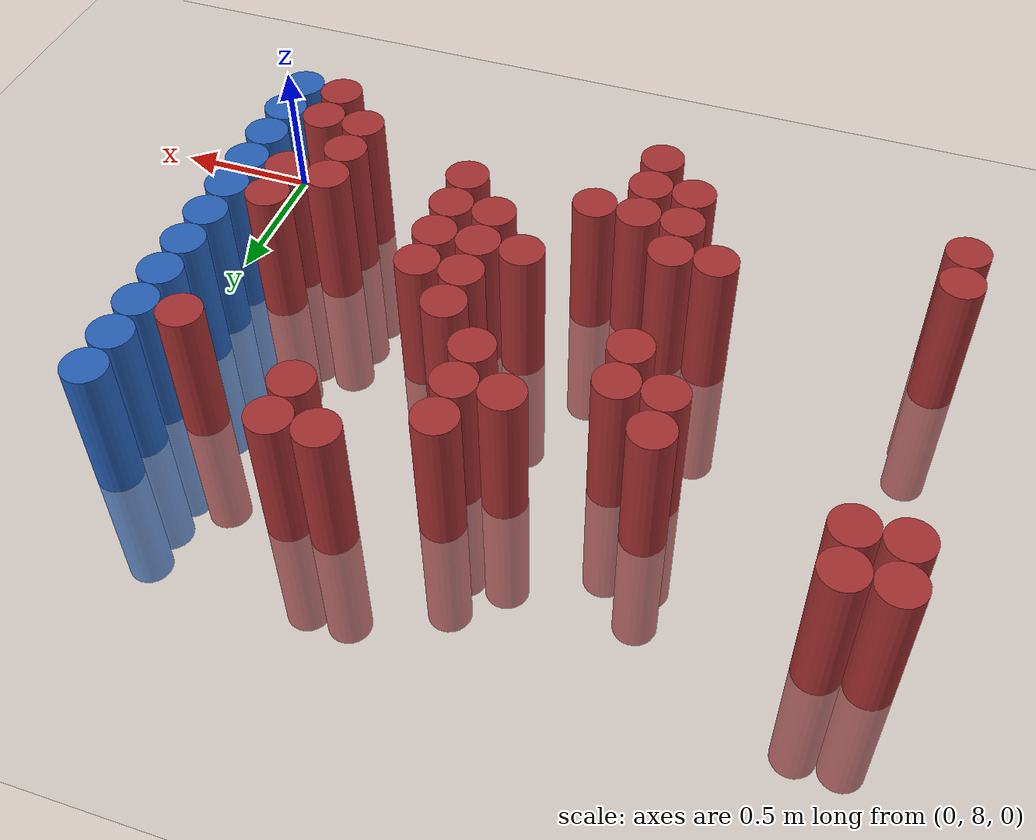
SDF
<sdf version="1.6">
 <world name="default">
  <model name="ground_plane">
   <static>1</static>
   <link name="link">
    <collision name="collision">
     <geometry><plane><normal>0 0 1</normal><size>100 100</size></plane></geometry>
     <surface><friction><ode><mu>100</mu><mu2>50</mu2></ode></friction></surface>
    </collision>
    <visual name="visual">
     <cast_shadows>0</cast_shadows>
     <geometry><plane><normal>0 0 1</normal><size>100 100</size></plane></geometry>
     <material>
      <script><uri>file://media/materials/scripts/gazebo.material</uri><name>Gazebo/Grey</name></script>
     </material>
    </visual>
   </link>
  </model>
  <model name="unit_cylinder_176">
   <static>1</static>
   <pose>-2.475000 8.175000 0.000000 0.000000 0.000000 0.000000</pose>
   <link name="link">
    <inertial>
     <mass>1</mass>
     <inertia><ixx>0.145833</ixx><ixy>0</ixy><ixz>0</ixz><iyy>0.145833</iyy><iyz>0</iyz><izz>0.125</izz></inertia>
    </inertial>
    <collision name="collision">
     <geometry><cylinder><radius>0.075000</radius><length>1</length></cylinder></geometry>
    </collision>
    <visual name="visual">
     <geometry><cylinder><radius>0.075000</radius><length>1</length></cylinder></geometry>
     <material>
      <ambient>0.648000 0.192000 0.192000 1</ambient>
      <diffuse>0.648000 0.192000 0.192000 1</diffuse>
     </material>
     <material>
      <script><name>Gazebo/Grey</name><uri>file://media/materials/scripts/gazebo.material</uri></script>
     </material>
    </visual>
   </link>
  </model>
  <model name="unit_cylinder_177">
   <static>1</static>
   <pose>-2.475000 8.325000 0.000000 0.000000 0.000000 0.000000</pose>
   <link name="link">
    <inertial>
     <mass>1</mass>
     <inertia><ixx>0.145833</ixx><ixy>0</ixy><ixz>0</ixz><iyy>0.145833</iyy><iyz>0</iyz><izz>0.125</izz></inertia>
    </inertial>
    <collision name="collision">
     <geometry><cylinder><radius>0.075000</radius><length>1</length></cylinder></geometry>
    </collision>
    <visual name="visual">
     <geometry><cylinder><radius>0.075000</radius><length>1</length></cylinder></geometry>
     <material>
      <ambient>0.648000 0.192000 0.192000 1</ambient>
      <diffuse>0.648000 0.192000 0.192000 1</diffuse>
     </material>
     <material>
      <script><name>Gazebo/Grey</name><uri>file://media/materials/scripts/gazebo.material</uri></script>
     </material>
    </visual>
   </link>
  </model>
  <model name="unit_cylinder_178">
   <static>1</static>
   <pose>-2.475000 9.375000 0.000000 0.000000 0.000000 0.000000</pose>
   <link name="link">
    <inertial>
     <mass>1</mass>
     <inertia><ixx>0.145833</ixx><ixy>0</ixy><ixz>0</ixz><iyy>0.145833</iyy><iyz>0</iyz><izz>0.125</izz></inertia>
    </inertial>
    <collision name="collision">
     <geometry><cylinder><radius>0.075000</radius><length>1</length></cylinder></geometry>
    </collision>
    <visual name="visual">
     <geometry><cylinder><radius>0.075000</radius><length>1</length></cylinder></geometry>
     <material>
      <ambient>0.648000 0.192000 0.192000 1</ambient>
      <diffuse>0.648000 0.192000 0.192000 1</diffuse>
     </material>
     <material>
      <script><name>Gazebo/Grey</name><uri>file://media/materials/scripts/gazebo.material</uri></script>
     </material>
    </visual>
   </link>
  </model>
  <model name="unit_cylinder_179">
   <static>1</static>
   <pose>-2.475000 9.525000 0.000000 0.000000 0.000000 0.000000</pose>
   <link name="link">
    <inertial>
     <mass>1</mass>
     <inertia><ixx>0.145833</ixx><ixy>0</ixy><ixz>0</ixz><iyy>0.145833</iyy><iyz>0</iyz><izz>0.125</izz></inertia>
    </inertial>
    <collision name="collision">
     <geometry><cylinder><radius>0.075000</radius><length>1</length></cylinder></geometry>
    </collision>
    <visual name="visual">
     <geometry><cylinder><radius>0.075000</radius><length>1</length></cylinder></geometry>
     <material>
      <ambient>0.648000 0.192000 0.192000 1</ambient>
      <diffuse>0.648000 0.192000 0.192000 1</diffuse>
     </material>
     <material>
      <script><name>Gazebo/Grey</name><uri>file://media/materials/scripts/gazebo.material</uri></script>
     </material>
    </visual>
   </link>
  </model>
  <model name="unit_cylinder_187">
   <static>1</static>
   <pose>-2.325000 9.375000 0.000000 0.000000 0.000000 0.000000</pose>
   <link name="link">
    <inertial>
     <mass>1</mass>
     <inertia><ixx>0.145833</ixx><ixy>0</ixy><ixz>0</ixz><iyy>0.145833</iyy><iyz>0</iyz><izz>0.125</izz></inertia>
    </inertial>
    <collision name="collision">
     <geometry><cylinder><radius>0.075000</radius><length>1</length></cylinder></geometry>
    </collision>
    <visual name="visual">
     <geometry><cylinder><radius>0.075000</radius><length>1</length></cylinder></geometry>
     <material>
      <ambient>0.648000 0.192000 0.192000 1</ambient>
      <diffuse>0.648000 0.192000 0.192000 1</diffuse>
     </material>
     <material>
      <script><name>Gazebo/Grey</name><uri>file://media/materials/scripts/gazebo.material</uri></script>
     </material>
    </visual>
   </link>
  </model>
  <model name="unit_cylinder_188">
   <static>1</static>
   <pose>-2.325000 9.525000 0.000000 0.000000 0.000000 0.000000</pose>
   <link name="link">
    <inertial>
     <mass>1</mass>
     <inertia><ixx>0.145833</ixx><ixy>0</ixy><ixz>0</ixz><iyy>0.145833</iyy><iyz>0</iyz><izz>0.125</izz></inertia>
    </inertial>
    <collision name="collision">
     <geometry><cylinder><radius>0.075000</radius><length>1</length></cylinder></geometry>
    </collision>
    <visual name="visual">
     <geometry><cylinder><radius>0.075000</radius><length>1</length></cylinder></geometry>
     <material>
      <ambient>0.648000 0.192000 0.192000 1</ambient>
      <diffuse>0.648000 0.192000 0.192000 1</diffuse>
     </material>
     <material>
      <script><name>Gazebo/Grey</name><uri>file://media/materials/scripts/gazebo.material</uri></script>
     </material>
    </visual>
   </link>
  </model>
  <model name="unit_cylinder_204">
   <static>1</static>
   <pose>-1.725000 8.475000 0.000000 0.000000 0.000000 0.000000</pose>
   <link name="link">
    <inertial>
     <mass>1</mass>
     <inertia><ixx>0.145833</ixx><ixy>0</ixy><ixz>0</ixz><iyy>0.145833</iyy><iyz>0</iyz><izz>0.125</izz></inertia>
    </inertial>
    <collision name="collision">
     <geometry><cylinder><radius>0.075000</radius><length>1</length></cylinder></geometry>
    </collision>
    <visual name="visual">
     <geometry><cylinder><radius>0.075000</radius><length>1</length></cylinder></geometry>
     <material>
      <ambient>0.648000 0.192000 0.192000 1</ambient>
      <diffuse>0.648000 0.192000 0.192000 1</diffuse>
     </material>
     <material>
      <script><name>Gazebo/Grey</name><uri>file://media/materials/scripts/gazebo.material</uri></script>
     </material>
    </visual>
   </link>
  </model>
  <model name="unit_cylinder_205">
   <static>1</static>
   <pose>-1.725000 9.075000 0.000000 0.000000 0.000000 0.000000</pose>
   <link name="link">
    <inertial>
     <mass>1</mass>
     <inertia><ixx>0.145833</ixx><ixy>0</ixy><ixz>0</ixz><iyy>0.145833</iyy><iyz>0</iyz><izz>0.125</izz></inertia>
    </inertial>
    <collision name="collision">
     <geometry><cylinder><radius>0.075000</radius><length>1</length></cylinder></geometry>
    </collision>
    <visual name="visual">
     <geometry><cylinder><radius>0.075000</radius><length>1</length></cylinder></geometry>
     <material>
      <ambient>0.648000 0.192000 0.192000 1</ambient>
      <diffuse>0.648000 0.192000 0.192000 1</diffuse>
     </material>
     <material>
      <script><name>Gazebo/Grey</name><uri>file://media/materials/scripts/gazebo.material</uri></script>
     </material>
    </visual>
   </link>
  </model>
  <model name="unit_cylinder_206">
   <static>1</static>
   <pose>-1.725000 9.225000 0.000000 0.000000 0.000000 0.000000</pose>
   <link name="link">
    <inertial>
     <mass>1</mass>
     <inertia><ixx>0.145833</ixx><ixy>0</ixy><ixz>0</ixz><iyy>0.145833</iyy><iyz>0</iyz><izz>0.125</izz></inertia>
    </inertial>
    <collision name="collision">
     <geometry><cylinder><radius>0.075000</radius><length>1</length></cylinder></geometry>
    </collision>
    <visual name="visual">
     <geometry><cylinder><radius>0.075000</radius><length>1</length></cylinder></geometry>
     <material>
      <ambient>0.648000 0.192000 0.192000 1</ambient>
      <diffuse>0.648000 0.192000 0.192000 1</diffuse>
     </material>
     <material>
      <script><name>Gazebo/Grey</name><uri>file://media/materials/scripts/gazebo.material</uri></script>
     </material>
    </visual>
   </link>
  </model>
  <model name="unit_cylinder_209">
   <static>1</static>
   <pose>-1.575000 8.175000 0.000000 0.000000 0.000000 0.000000</pose>
   <link name="link">
    <inertial>
     <mass>1</mass>
     <inertia><ixx>0.145833</ixx><ixy>0</ixy><ixz>0</ixz><iyy>0.145833</iyy><iyz>0</iyz><izz>0.125</izz></inertia>
    </inertial>
    <collision name="collision">
     <geometry><cylinder><radius>0.075000</radius><length>1</length></cylinder></geometry>
    </collision>
    <visual name="visual">
     <geometry><cylinder><radius>0.075000</radius><length>1</length></cylinder></geometry>
     <material>
      <ambient>0.648000 0.192000 0.192000 1</ambient>
      <diffuse>0.648000 0.192000 0.192000 1</diffuse>
     </material>
     <material>
      <script><name>Gazebo/Grey</name><uri>file://media/materials/scripts/gazebo.material</uri></script>
     </material>
    </visual>
   </link>
  </model>
  <model name="unit_cylinder_210">
   <static>1</static>
   <pose>-1.575000 8.325000 0.000000 0.000000 0.000000 0.000000</pose>
   <link name="link">
    <inertial>
     <mass>1</mass>
     <inertia><ixx>0.145833</ixx><ixy>0</ixy><ixz>0</ixz><iyy>0.145833</iyy><iyz>0</iyz><izz>0.125</izz></inertia>
    </inertial>
    <collision name="collision">
     <geometry><cylinder><radius>0.075000</radius><length>1</length></cylinder></geometry>
    </collision>
    <visual name="visual">
     <geometry><cylinder><radius>0.075000</radius><length>1</length></cylinder></geometry>
     <material>
      <ambient>0.648000 0.192000 0.192000 1</ambient>
      <diffuse>0.648000 0.192000 0.192000 1</diffuse>
     </material>
     <material>
      <script><name>Gazebo/Grey</name><uri>file://media/materials/scripts/gazebo.material</uri></script>
     </material>
    </visual>
   </link>
  </model>
  <model name="unit_cylinder_211">
   <static>1</static>
   <pose>-1.575000 8.475000 0.000000 0.000000 0.000000 0.000000</pose>
   <link name="link">
    <inertial>
     <mass>1</mass>
     <inertia><ixx>0.145833</ixx><ixy>0</ixy><ixz>0</ixz><iyy>0.145833</iyy><iyz>0</iyz><izz>0.125</izz></inertia>
    </inertial>
    <collision name="collision">
     <geometry><cylinder><radius>0.075000</radius><length>1</length></cylinder></geometry>
    </collision>
    <visual name="visual">
     <geometry><cylinder><radius>0.075000</radius><length>1</length></cylinder></geometry>
     <material>
      <ambient>0.648000 0.192000 0.192000 1</ambient>
      <diffuse>0.648000 0.192000 0.192000 1</diffuse>
     </material>
     <material>
      <script><name>Gazebo/Grey</name><uri>file://media/materials/scripts/gazebo.material</uri></script>
     </material>
    </visual>
   </link>
  </model>
  <model name="unit_cylinder_212">
   <static>1</static>
   <pose>-1.575000 8.925000 0.000000 0.000000 0.000000 0.000000</pose>
   <link name="link">
    <inertial>
     <mass>1</mass>
     <inertia><ixx>0.145833</ixx><ixy>0</ixy><ixz>0</ixz><iyy>0.145833</iyy><iyz>0</iyz><izz>0.125</izz></inertia>
    </inertial>
    <collision name="collision">
     <geometry><cylinder><radius>0.075000</radius><length>1</length></cylinder></geometry>
    </collision>
    <visual name="visual">
     <geometry><cylinder><radius>0.075000</radius><length>1</length></cylinder></geometry>
     <material>
      <ambient>0.648000 0.192000 0.192000 1</ambient>
      <diffuse>0.648000 0.192000 0.192000 1</diffuse>
     </material>
     <material>
      <script><name>Gazebo/Grey</name><uri>file://media/materials/scripts/gazebo.material</uri></script>
     </material>
    </visual>
   </link>
  </model>
  <model name="unit_cylinder_213">
   <static>1</static>
   <pose>-1.575000 9.075000 0.000000 0.000000 0.000000 0.000000</pose>
   <link name="link">
    <inertial>
     <mass>1</mass>
     <inertia><ixx>0.145833</ixx><ixy>0</ixy><ixz>0</ixz><iyy>0.145833</iyy><iyz>0</iyz><izz>0.125</izz></inertia>
    </inertial>
    <collision name="collision">
     <geometry><cylinder><radius>0.075000</radius><length>1</length></cylinder></geometry>
    </collision>
    <visual name="visual">
     <geometry><cylinder><radius>0.075000</radius><length>1</length></cylinder></geometry>
     <material>
      <ambient>0.648000 0.192000 0.192000 1</ambient>
      <diffuse>0.648000 0.192000 0.192000 1</diffuse>
     </material>
     <material>
      <script><name>Gazebo/Grey</name><uri>file://media/materials/scripts/gazebo.material</uri></script>
     </material>
    </visual>
   </link>
  </model>
  <model name="unit_cylinder_219">
   <static>1</static>
   <pose>-1.425000 8.025000 0.000000 0.000000 0.000000 0.000000</pose>
   <link name="link">
    <inertial>
     <mass>1</mass>
     <inertia><ixx>0.145833</ixx><ixy>0</ixy><ixz>0</ixz><iyy>0.145833</iyy><iyz>0</iyz><izz>0.125</izz></inertia>
    </inertial>
    <collision name="collision">
     <geometry><cylinder><radius>0.075000</radius><length>1</length></cylinder></geometry>
    </collision>
    <visual name="visual">
     <geometry><cylinder><radius>0.075000</radius><length>1</length></cylinder></geometry>
     <material>
      <ambient>0.648000 0.192000 0.192000 1</ambient>
      <diffuse>0.648000 0.192000 0.192000 1</diffuse>
     </material>
     <material>
      <script><name>Gazebo/Grey</name><uri>file://media/materials/scripts/gazebo.material</uri></script>
     </material>
    </visual>
   </link>
  </model>
  <model name="unit_cylinder_220">
   <static>1</static>
   <pose>-1.425000 8.175000 0.000000 0.000000 0.000000 0.000000</pose>
   <link name="link">
    <inertial>
     <mass>1</mass>
     <inertia><ixx>0.145833</ixx><ixy>0</ixy><ixz>0</ixz><iyy>0.145833</iyy><iyz>0</iyz><izz>0.125</izz></inertia>
    </inertial>
    <collision name="collision">
     <geometry><cylinder><radius>0.075000</radius><length>1</length></cylinder></geometry>
    </collision>
    <visual name="visual">
     <geometry><cylinder><radius>0.075000</radius><length>1</length></cylinder></geometry>
     <material>
      <ambient>0.648000 0.192000 0.192000 1</ambient>
      <diffuse>0.648000 0.192000 0.192000 1</diffuse>
     </material>
     <material>
      <script><name>Gazebo/Grey</name><uri>file://media/materials/scripts/gazebo.material</uri></script>
     </material>
    </visual>
   </link>
  </model>
  <model name="unit_cylinder_221">
   <static>1</static>
   <pose>-1.425000 8.325000 0.000000 0.000000 0.000000 0.000000</pose>
   <link name="link">
    <inertial>
     <mass>1</mass>
     <inertia><ixx>0.145833</ixx><ixy>0</ixy><ixz>0</ixz><iyy>0.145833</iyy><iyz>0</iyz><izz>0.125</izz></inertia>
    </inertial>
    <collision name="collision">
     <geometry><cylinder><radius>0.075000</radius><length>1</length></cylinder></geometry>
    </collision>
    <visual name="visual">
     <geometry><cylinder><radius>0.075000</radius><length>1</length></cylinder></geometry>
     <material>
      <ambient>0.648000 0.192000 0.192000 1</ambient>
      <diffuse>0.648000 0.192000 0.192000 1</diffuse>
     </material>
     <material>
      <script><name>Gazebo/Grey</name><uri>file://media/materials/scripts/gazebo.material</uri></script>
     </material>
    </visual>
   </link>
  </model>
  <model name="unit_cylinder_226">
   <static>1</static>
   <pose>-1.275000 8.325000 0.000000 0.000000 0.000000 0.000000</pose>
   <link name="link">
    <inertial>
     <mass>1</mass>
     <inertia><ixx>0.145833</ixx><ixy>0</ixy><ixz>0</ixz><iyy>0.145833</iyy><iyz>0</iyz><izz>0.125</izz></inertia>
    </inertial>
    <collision name="collision">
     <geometry><cylinder><radius>0.075000</radius><length>1</length></cylinder></geometry>
    </collision>
    <visual name="visual">
     <geometry><cylinder><radius>0.075000</radius><length>1</length></cylinder></geometry>
     <material>
      <ambient>0.648000 0.192000 0.192000 1</ambient>
      <diffuse>0.648000 0.192000 0.192000 1</diffuse>
     </material>
     <material>
      <script><name>Gazebo/Grey</name><uri>file://media/materials/scripts/gazebo.material</uri></script>
     </material>
    </visual>
   </link>
  </model>
  <model name="unit_cylinder_227">
   <static>1</static>
   <pose>-1.275000 9.225000 0.000000 0.000000 0.000000 0.000000</pose>
   <link name="link">
    <inertial>
     <mass>1</mass>
     <inertia><ixx>0.145833</ixx><ixy>0</ixy><ixz>0</ixz><iyy>0.145833</iyy><iyz>0</iyz><izz>0.125</izz></inertia>
    </inertial>
    <collision name="collision">
     <geometry><cylinder><radius>0.075000</radius><length>1</length></cylinder></geometry>
    </collision>
    <visual name="visual">
     <geometry><cylinder><radius>0.075000</radius><length>1</length></cylinder></geometry>
     <material>
      <ambient>0.648000 0.192000 0.192000 1</ambient>
      <diffuse>0.648000 0.192000 0.192000 1</diffuse>
     </material>
     <material>
      <script><name>Gazebo/Grey</name><uri>file://media/materials/scripts/gazebo.material</uri></script>
     </material>
    </visual>
   </link>
  </model>
  <model name="unit_cylinder_232">
   <static>1</static>
   <pose>-1.125000 8.625000 0.000000 0.000000 0.000000 0.000000</pose>
   <link name="link">
    <inertial>
     <mass>1</mass>
     <inertia><ixx>0.145833</ixx><ixy>0</ixy><ixz>0</ixz><iyy>0.145833</iyy><iyz>0</iyz><izz>0.125</izz></inertia>
    </inertial>
    <collision name="collision">
     <geometry><cylinder><radius>0.075000</radius><length>1</length></cylinder></geometry>
    </collision>
    <visual name="visual">
     <geometry><cylinder><radius>0.075000</radius><length>1</length></cylinder></geometry>
     <material>
      <ambient>0.648000 0.192000 0.192000 1</ambient>
      <diffuse>0.648000 0.192000 0.192000 1</diffuse>
     </material>
     <material>
      <script><name>Gazebo/Grey</name><uri>file://media/materials/scripts/gazebo.material</uri></script>
     </material>
    </visual>
   </link>
  </model>
  <model name="unit_cylinder_233">
   <static>1</static>
   <pose>-1.125000 9.075000 0.000000 0.000000 0.000000 0.000000</pose>
   <link name="link">
    <inertial>
     <mass>1</mass>
     <inertia><ixx>0.145833</ixx><ixy>0</ixy><ixz>0</ixz><iyy>0.145833</iyy><iyz>0</iyz><izz>0.125</izz></inertia>
    </inertial>
    <collision name="collision">
     <geometry><cylinder><radius>0.075000</radius><length>1</length></cylinder></geometry>
    </collision>
    <visual name="visual">
     <geometry><cylinder><radius>0.075000</radius><length>1</length></cylinder></geometry>
     <material>
      <ambient>0.648000 0.192000 0.192000 1</ambient>
      <diffuse>0.648000 0.192000 0.192000 1</diffuse>
     </material>
     <material>
      <script><name>Gazebo/Grey</name><uri>file://media/materials/scripts/gazebo.material</uri></script>
     </material>
    </visual>
   </link>
  </model>
  <model name="unit_cylinder_234">
   <static>1</static>
   <pose>-1.125000 9.225000 0.000000 0.000000 0.000000 0.000000</pose>
   <link name="link">
    <inertial>
     <mass>1</mass>
     <inertia><ixx>0.145833</ixx><ixy>0</ixy><ixz>0</ixz><iyy>0.145833</iyy><iyz>0</iyz><izz>0.125</izz></inertia>
    </inertial>
    <collision name="collision">
     <geometry><cylinder><radius>0.075000</radius><length>1</length></cylinder></geometry>
    </collision>
    <visual name="visual">
     <geometry><cylinder><radius>0.075000</radius><length>1</length></cylinder></geometry>
     <material>
      <ambient>0.648000 0.192000 0.192000 1</ambient>
      <diffuse>0.648000 0.192000 0.192000 1</diffuse>
     </material>
     <material>
      <script><name>Gazebo/Grey</name><uri>file://media/materials/scripts/gazebo.material</uri></script>
     </material>
    </visual>
   </link>
  </model>
  <model name="unit_cylinder_235">
   <static>1</static>
   <pose>-1.125000 9.375000 0.000000 0.000000 0.000000 0.000000</pose>
   <link name="link">
    <inertial>
     <mass>1</mass>
     <inertia><ixx>0.145833</ixx><ixy>0</ixy><ixz>0</ixz><iyy>0.145833</iyy><iyz>0</iyz><izz>0.125</izz></inertia>
    </inertial>
    <collision name="collision">
     <geometry><cylinder><radius>0.075000</radius><length>1</length></cylinder></geometry>
    </collision>
    <visual name="visual">
     <geometry><cylinder><radius>0.075000</radius><length>1</length></cylinder></geometry>
     <material>
      <ambient>0.648000 0.192000 0.192000 1</ambient>
      <diffuse>0.648000 0.192000 0.192000 1</diffuse>
     </material>
     <material>
      <script><name>Gazebo/Grey</name><uri>file://media/materials/scripts/gazebo.material</uri></script>
     </material>
    </visual>
   </link>
  </model>
  <model name="unit_cylinder_243">
   <static>1</static>
   <pose>-0.975000 8.475000 0.000000 0.000000 0.000000 0.000000</pose>
   <link name="link">
    <inertial>
     <mass>1</mass>
     <inertia><ixx>0.145833</ixx><ixy>0</ixy><ixz>0</ixz><iyy>0.145833</iyy><iyz>0</iyz><izz>0.125</izz></inertia>
    </inertial>
    <collision name="collision">
     <geometry><cylinder><radius>0.075000</radius><length>1</length></cylinder></geometry>
    </collision>
    <visual name="visual">
     <geometry><cylinder><radius>0.075000</radius><length>1</length></cylinder></geometry>
     <material>
      <ambient>0.648000 0.192000 0.192000 1</ambient>
      <diffuse>0.648000 0.192000 0.192000 1</diffuse>
     </material>
     <material>
      <script><name>Gazebo/Grey</name><uri>file://media/materials/scripts/gazebo.material</uri></script>
     </material>
    </visual>
   </link>
  </model>
  <model name="unit_cylinder_244">
   <static>1</static>
   <pose>-0.975000 8.625000 0.000000 0.000000 0.000000 0.000000</pose>
   <link name="link">
    <inertial>
     <mass>1</mass>
     <inertia><ixx>0.145833</ixx><ixy>0</ixy><ixz>0</ixz><iyy>0.145833</iyy><iyz>0</iyz><izz>0.125</izz></inertia>
    </inertial>
    <collision name="collision">
     <geometry><cylinder><radius>0.075000</radius><length>1</length></cylinder></geometry>
    </collision>
    <visual name="visual">
     <geometry><cylinder><radius>0.075000</radius><length>1</length></cylinder></geometry>
     <material>
      <ambient>0.648000 0.192000 0.192000 1</ambient>
      <diffuse>0.648000 0.192000 0.192000 1</diffuse>
     </material>
     <material>
      <script><name>Gazebo/Grey</name><uri>file://media/materials/scripts/gazebo.material</uri></script>
     </material>
    </visual>
   </link>
  </model>
  <model name="unit_cylinder_245">
   <static>1</static>
   <pose>-0.975000 8.775000 0.000000 0.000000 0.000000 0.000000</pose>
   <link name="link">
    <inertial>
     <mass>1</mass>
     <inertia><ixx>0.145833</ixx><ixy>0</ixy><ixz>0</ixz><iyy>0.145833</iyy><iyz>0</iyz><izz>0.125</izz></inertia>
    </inertial>
    <collision name="collision">
     <geometry><cylinder><radius>0.075000</radius><length>1</length></cylinder></geometry>
    </collision>
    <visual name="visual">
     <geometry><cylinder><radius>0.075000</radius><length>1</length></cylinder></geometry>
     <material>
      <ambient>0.648000 0.192000 0.192000 1</ambient>
      <diffuse>0.648000 0.192000 0.192000 1</diffuse>
     </material>
     <material>
      <script><name>Gazebo/Grey</name><uri>file://media/materials/scripts/gazebo.material</uri></script>
     </material>
    </visual>
   </link>
  </model>
  <model name="unit_cylinder_246">
   <static>1</static>
   <pose>-0.975000 8.925000 0.000000 0.000000 0.000000 0.000000</pose>
   <link name="link">
    <inertial>
     <mass>1</mass>
     <inertia><ixx>0.145833</ixx><ixy>0</ixy><ixz>0</ixz><iyy>0.145833</iyy><iyz>0</iyz><izz>0.125</izz></inertia>
    </inertial>
    <collision name="collision">
     <geometry><cylinder><radius>0.075000</radius><length>1</length></cylinder></geometry>
    </collision>
    <visual name="visual">
     <geometry><cylinder><radius>0.075000</radius><length>1</length></cylinder></geometry>
     <material>
      <ambient>0.648000 0.192000 0.192000 1</ambient>
      <diffuse>0.648000 0.192000 0.192000 1</diffuse>
     </material>
     <material>
      <script><name>Gazebo/Grey</name><uri>file://media/materials/scripts/gazebo.material</uri></script>
     </material>
    </visual>
   </link>
  </model>
  <model name="unit_cylinder_252">
   <static>1</static>
   <pose>-0.825000 8.325000 0.000000 0.000000 0.000000 0.000000</pose>
   <link name="link">
    <inertial>
     <mass>1</mass>
     <inertia><ixx>0.145833</ixx><ixy>0</ixy><ixz>0</ixz><iyy>0.145833</iyy><iyz>0</iyz><izz>0.125</izz></inertia>
    </inertial>
    <collision name="collision">
     <geometry><cylinder><radius>0.075000</radius><length>1</length></cylinder></geometry>
    </collision>
    <visual name="visual">
     <geometry><cylinder><radius>0.075000</radius><length>1</length></cylinder></geometry>
     <material>
      <ambient>0.648000 0.192000 0.192000 1</ambient>
      <diffuse>0.648000 0.192000 0.192000 1</diffuse>
     </material>
     <material>
      <script><name>Gazebo/Grey</name><uri>file://media/materials/scripts/gazebo.material</uri></script>
     </material>
    </visual>
   </link>
  </model>
  <model name="unit_cylinder_253">
   <static>1</static>
   <pose>-0.825000 8.475000 0.000000 0.000000 0.000000 0.000000</pose>
   <link name="link">
    <inertial>
     <mass>1</mass>
     <inertia><ixx>0.145833</ixx><ixy>0</ixy><ixz>0</ixz><iyy>0.145833</iyy><iyz>0</iyz><izz>0.125</izz></inertia>
    </inertial>
    <collision name="collision">
     <geometry><cylinder><radius>0.075000</radius><length>1</length></cylinder></geometry>
    </collision>
    <visual name="visual">
     <geometry><cylinder><radius>0.075000</radius><length>1</length></cylinder></geometry>
     <material>
      <ambient>0.648000 0.192000 0.192000 1</ambient>
      <diffuse>0.648000 0.192000 0.192000 1</diffuse>
     </material>
     <material>
      <script><name>Gazebo/Grey</name><uri>file://media/materials/scripts/gazebo.material</uri></script>
     </material>
    </visual>
   </link>
  </model>
  <model name="unit_cylinder_254">
   <static>1</static>
   <pose>-0.825000 8.625000 0.000000 0.000000 0.000000 0.000000</pose>
   <link name="link">
    <inertial>
     <mass>1</mass>
     <inertia><ixx>0.145833</ixx><ixy>0</ixy><ixz>0</ixz><iyy>0.145833</iyy><iyz>0</iyz><izz>0.125</izz></inertia>
    </inertial>
    <collision name="collision">
     <geometry><cylinder><radius>0.075000</radius><length>1</length></cylinder></geometry>
    </collision>
    <visual name="visual">
     <geometry><cylinder><radius>0.075000</radius><length>1</length></cylinder></geometry>
     <material>
      <ambient>0.648000 0.192000 0.192000 1</ambient>
      <diffuse>0.648000 0.192000 0.192000 1</diffuse>
     </material>
     <material>
      <script><name>Gazebo/Grey</name><uri>file://media/materials/scripts/gazebo.material</uri></script>
     </material>
    </visual>
   </link>
  </model>
  <model name="unit_cylinder_255">
   <static>1</static>
   <pose>-0.825000 8.775000 0.000000 0.000000 0.000000 0.000000</pose>
   <link name="link">
    <inertial>
     <mass>1</mass>
     <inertia><ixx>0.145833</ixx><ixy>0</ixy><ixz>0</ixz><iyy>0.145833</iyy><iyz>0</iyz><izz>0.125</izz></inertia>
    </inertial>
    <collision name="collision">
     <geometry><cylinder><radius>0.075000</radius><length>1</length></cylinder></geometry>
    </collision>
    <visual name="visual">
     <geometry><cylinder><radius>0.075000</radius><length>1</length></cylinder></geometry>
     <material>
      <ambient>0.648000 0.192000 0.192000 1</ambient>
      <diffuse>0.648000 0.192000 0.192000 1</diffuse>
     </material>
     <material>
      <script><name>Gazebo/Grey</name><uri>file://media/materials/scripts/gazebo.material</uri></script>
     </material>
    </visual>
   </link>
  </model>
  <model name="unit_cylinder_256">
   <static>1</static>
   <pose>-0.825000 9.525000 0.000000 0.000000 0.000000 0.000000</pose>
   <link name="link">
    <inertial>
     <mass>1</mass>
     <inertia><ixx>0.145833</ixx><ixy>0</ixy><ixz>0</ixz><iyy>0.145833</iyy><iyz>0</iyz><izz>0.125</izz></inertia>
    </inertial>
    <collision name="collision">
     <geometry><cylinder><radius>0.075000</radius><length>1</length></cylinder></geometry>
    </collision>
    <visual name="visual">
     <geometry><cylinder><radius>0.075000</radius><length>1</length></cylinder></geometry>
     <material>
      <ambient>0.648000 0.192000 0.192000 1</ambient>
      <diffuse>0.648000 0.192000 0.192000 1</diffuse>
     </material>
     <material>
      <script><name>Gazebo/Grey</name><uri>file://media/materials/scripts/gazebo.material</uri></script>
     </material>
    </visual>
   </link>
  </model>
  <model name="unit_cylinder_261">
   <static>1</static>
   <pose>-0.675000 9.375000 0.000000 0.000000 0.000000 0.000000</pose>
   <link name="link">
    <inertial>
     <mass>1</mass>
     <inertia><ixx>0.145833</ixx><ixy>0</ixy><ixz>0</ixz><iyy>0.145833</iyy><iyz>0</iyz><izz>0.125</izz></inertia>
    </inertial>
    <collision name="collision">
     <geometry><cylinder><radius>0.075000</radius><length>1</length></cylinder></geometry>
    </collision>
    <visual name="visual">
     <geometry><cylinder><radius>0.075000</radius><length>1</length></cylinder></geometry>
     <material>
      <ambient>0.648000 0.192000 0.192000 1</ambient>
      <diffuse>0.648000 0.192000 0.192000 1</diffuse>
     </material>
     <material>
      <script><name>Gazebo/Grey</name><uri>file://media/materials/scripts/gazebo.material</uri></script>
     </material>
    </visual>
   </link>
  </model>
  <model name="unit_cylinder_262">
   <static>1</static>
   <pose>-0.675000 9.525000 0.000000 0.000000 0.000000 0.000000</pose>
   <link name="link">
    <inertial>
     <mass>1</mass>
     <inertia><ixx>0.145833</ixx><ixy>0</ixy><ixz>0</ixz><iyy>0.145833</iyy><iyz>0</iyz><izz>0.125</izz></inertia>
    </inertial>
    <collision name="collision">
     <geometry><cylinder><radius>0.075000</radius><length>1</length></cylinder></geometry>
    </collision>
    <visual name="visual">
     <geometry><cylinder><radius>0.075000</radius><length>1</length></cylinder></geometry>
     <material>
      <ambient>0.648000 0.192000 0.192000 1</ambient>
      <diffuse>0.648000 0.192000 0.192000 1</diffuse>
     </material>
     <material>
      <script><name>Gazebo/Grey</name><uri>file://media/materials/scripts/gazebo.material</uri></script>
     </material>
    </visual>
   </link>
  </model>
  <model name="unit_cylinder_271">
   <static>1</static>
   <pose>-0.375000 8.175000 0.000000 0.000000 0.000000 0.000000</pose>
   <link name="link">
    <inertial>
     <mass>1</mass>
     <inertia><ixx>0.145833</ixx><ixy>0</ixy><ixz>0</ixz><iyy>0.145833</iyy><iyz>0</iyz><izz>0.125</izz></inertia>
    </inertial>
    <collision name="collision">
     <geometry><cylinder><radius>0.075000</radius><length>1</length></cylinder></geometry>
    </collision>
    <visual name="visual">
     <geometry><cylinder><radius>0.075000</radius><length>1</length></cylinder></geometry>
     <material>
      <ambient>0.648000 0.192000 0.192000 1</ambient>
      <diffuse>0.648000 0.192000 0.192000 1</diffuse>
     </material>
     <material>
      <script><name>Gazebo/Grey</name><uri>file://media/materials/scripts/gazebo.material</uri></script>
     </material>
    </visual>
   </link>
  </model>
  <model name="unit_cylinder_272">
   <static>1</static>
   <pose>-0.375000 8.325000 0.000000 0.000000 0.000000 0.000000</pose>
   <link name="link">
    <inertial>
     <mass>1</mass>
     <inertia><ixx>0.145833</ixx><ixy>0</ixy><ixz>0</ixz><iyy>0.145833</iyy><iyz>0</iyz><izz>0.125</izz></inertia>
    </inertial>
    <collision name="collision">
     <geometry><cylinder><radius>0.075000</radius><length>1</length></cylinder></geometry>
    </collision>
    <visual name="visual">
     <geometry><cylinder><radius>0.075000</radius><length>1</length></cylinder></geometry>
     <material>
      <ambient>0.648000 0.192000 0.192000 1</ambient>
      <diffuse>0.648000 0.192000 0.192000 1</diffuse>
     </material>
     <material>
      <script><name>Gazebo/Grey</name><uri>file://media/materials/scripts/gazebo.material</uri></script>
     </material>
    </visual>
   </link>
  </model>
  <model name="unit_cylinder_273">
   <static>1</static>
   <pose>-0.375000 8.475000 0.000000 0.000000 0.000000 0.000000</pose>
   <link name="link">
    <inertial>
     <mass>1</mass>
     <inertia><ixx>0.145833</ixx><ixy>0</ixy><ixz>0</ixz><iyy>0.145833</iyy><iyz>0</iyz><izz>0.125</izz></inertia>
    </inertial>
    <collision name="collision">
     <geometry><cylinder><radius>0.075000</radius><length>1</length></cylinder></geometry>
    </collision>
    <visual name="visual">
     <geometry><cylinder><radius>0.075000</radius><length>1</length></cylinder></geometry>
     <material>
      <ambient>0.648000 0.192000 0.192000 1</ambient>
      <diffuse>0.648000 0.192000 0.192000 1</diffuse>
     </material>
     <material>
      <script><name>Gazebo/Grey</name><uri>file://media/materials/scripts/gazebo.material</uri></script>
     </material>
    </visual>
   </link>
  </model>
  <model name="unit_cylinder_279">
   <static>1</static>
   <pose>-0.225000 8.025000 0.000000 0.000000 0.000000 0.000000</pose>
   <link name="link">
    <inertial>
     <mass>1</mass>
     <inertia><ixx>0.145833</ixx><ixy>0</ixy><ixz>0</ixz><iyy>0.145833</iyy><iyz>0</iyz><izz>0.125</izz></inertia>
    </inertial>
    <collision name="collision">
     <geometry><cylinder><radius>0.075000</radius><length>1</length></cylinder></geometry>
    </collision>
    <visual name="visual">
     <geometry><cylinder><radius>0.075000</radius><length>1</length></cylinder></geometry>
     <material>
      <ambient>0.648000 0.192000 0.192000 1</ambient>
      <diffuse>0.648000 0.192000 0.192000 1</diffuse>
     </material>
     <material>
      <script><name>Gazebo/Grey</name><uri>file://media/materials/scripts/gazebo.material</uri></script>
     </material>
    </visual>
   </link>
  </model>
  <model name="unit_cylinder_280">
   <static>1</static>
   <pose>-0.225000 8.175000 0.000000 0.000000 0.000000 0.000000</pose>
   <link name="link">
    <inertial>
     <mass>1</mass>
     <inertia><ixx>0.145833</ixx><ixy>0</ixy><ixz>0</ixz><iyy>0.145833</iyy><iyz>0</iyz><izz>0.125</izz></inertia>
    </inertial>
    <collision name="collision">
     <geometry><cylinder><radius>0.075000</radius><length>1</length></cylinder></geometry>
    </collision>
    <visual name="visual">
     <geometry><cylinder><radius>0.075000</radius><length>1</length></cylinder></geometry>
     <material>
      <ambient>0.648000 0.192000 0.192000 1</ambient>
      <diffuse>0.648000 0.192000 0.192000 1</diffuse>
     </material>
     <material>
      <script><name>Gazebo/Grey</name><uri>file://media/materials/scripts/gazebo.material</uri></script>
     </material>
    </visual>
   </link>
  </model>
  <model name="unit_cylinder_281">
   <static>1</static>
   <pose>-0.225000 8.475000 0.000000 0.000000 0.000000 0.000000</pose>
   <link name="link">
    <inertial>
     <mass>1</mass>
     <inertia><ixx>0.145833</ixx><ixy>0</ixy><ixz>0</ixz><iyy>0.145833</iyy><iyz>0</iyz><izz>0.125</izz></inertia>
    </inertial>
    <collision name="collision">
     <geometry><cylinder><radius>0.075000</radius><length>1</length></cylinder></geometry>
    </collision>
    <visual name="visual">
     <geometry><cylinder><radius>0.075000</radius><length>1</length></cylinder></geometry>
     <material>
      <ambient>0.648000 0.192000 0.192000 1</ambient>
      <diffuse>0.648000 0.192000 0.192000 1</diffuse>
     </material>
     <material>
      <script><name>Gazebo/Grey</name><uri>file://media/materials/scripts/gazebo.material</uri></script>
     </material>
    </visual>
   </link>
  </model>
  <model name="unit_cylinder_282">
   <static>1</static>
   <pose>-0.225000 8.625000 0.000000 0.000000 0.000000 0.000000</pose>
   <link name="link">
    <inertial>
     <mass>1</mass>
     <inertia><ixx>0.145833</ixx><ixy>0</ixy><ixz>0</ixz><iyy>0.145833</iyy><iyz>0</iyz><izz>0.125</izz></inertia>
    </inertial>
    <collision name="collision">
     <geometry><cylinder><radius>0.075000</radius><length>1</length></cylinder></geometry>
    </collision>
    <visual name="visual">
     <geometry><cylinder><radius>0.075000</radius><length>1</length></cylinder></geometry>
     <material>
      <ambient>0.648000 0.192000 0.192000 1</ambient>
      <diffuse>0.648000 0.192000 0.192000 1</diffuse>
     </material>
     <material>
      <script><name>Gazebo/Grey</name><uri>file://media/materials/scripts/gazebo.material</uri></script>
     </material>
    </visual>
   </link>
  </model>
  <model name="unit_cylinder_283">
   <static>1</static>
   <pose>-0.225000 9.225000 0.000000 0.000000 0.000000 0.000000</pose>
   <link name="link">
    <inertial>
     <mass>1</mass>
     <inertia><ixx>0.145833</ixx><ixy>0</ixy><ixz>0</ixz><iyy>0.145833</iyy><iyz>0</iyz><izz>0.125</izz></inertia>
    </inertial>
    <collision name="collision">
     <geometry><cylinder><radius>0.075000</radius><length>1</length></cylinder></geometry>
    </collision>
    <visual name="visual">
     <geometry><cylinder><radius>0.075000</radius><length>1</length></cylinder></geometry>
     <material>
      <ambient>0.648000 0.192000 0.192000 1</ambient>
      <diffuse>0.648000 0.192000 0.192000 1</diffuse>
     </material>
     <material>
      <script><name>Gazebo/Grey</name><uri>file://media/materials/scripts/gazebo.material</uri></script>
     </material>
    </visual>
   </link>
  </model>
  <model name="unit_cylinder_303">
   <static>1</static>
   <pose>-0.075000 8.025000 0.000000 0.000000 0.000000 0.000000</pose>
   <link name="link">
    <inertial>
     <mass>1</mass>
     <inertia><ixx>0.145833</ixx><ixy>0</ixy><ixz>0</ixz><iyy>0.145833</iyy><iyz>0</iyz><izz>0.125</izz></inertia>
    </inertial>
    <collision name="collision">
     <geometry><cylinder><radius>0.075000</radius><length>1</length></cylinder></geometry>
    </collision>
    <visual name="visual">
     <geometry><cylinder><radius>0.075000</radius><length>1</length></cylinder></geometry>
     <material>
      <ambient>0.152000 0.379000 0.720000 1</ambient>
      <diffuse>0.152000 0.379000 0.720000 1</diffuse>
     </material>
     <material>
      <script><name>Gazebo/Grey</name><uri>file://media/materials/scripts/gazebo.material</uri></script>
     </material>
    </visual>
   </link>
  </model>
  <model name="unit_cylinder_304">
   <static>1</static>
   <pose>-0.075000 8.175000 0.000000 0.000000 0.000000 0.000000</pose>
   <link name="link">
    <inertial>
     <mass>1</mass>
     <inertia><ixx>0.145833</ixx><ixy>0</ixy><ixz>0</ixz><iyy>0.145833</iyy><iyz>0</iyz><izz>0.125</izz></inertia>
    </inertial>
    <collision name="collision">
     <geometry><cylinder><radius>0.075000</radius><length>1</length></cylinder></geometry>
    </collision>
    <visual name="visual">
     <geometry><cylinder><radius>0.075000</radius><length>1</length></cylinder></geometry>
     <material>
      <ambient>0.152000 0.379000 0.720000 1</ambient>
      <diffuse>0.152000 0.379000 0.720000 1</diffuse>
     </material>
     <material>
      <script><name>Gazebo/Grey</name><uri>file://media/materials/scripts/gazebo.material</uri></script>
     </material>
    </visual>
   </link>
  </model>
  <model name="unit_cylinder_305">
   <static>1</static>
   <pose>-0.075000 8.325000 0.000000 0.000000 0.000000 0.000000</pose>
   <link name="link">
    <inertial>
     <mass>1</mass>
     <inertia><ixx>0.145833</ixx><ixy>0</ixy><ixz>0</ixz><iyy>0.145833</iyy><iyz>0</iyz><izz>0.125</izz></inertia>
    </inertial>
    <collision name="collision">
     <geometry><cylinder><radius>0.075000</radius><length>1</length></cylinder></geometry>
    </collision>
    <visual name="visual">
     <geometry><cylinder><radius>0.075000</radius><length>1</length></cylinder></geometry>
     <material>
      <ambient>0.152000 0.379000 0.720000 1</ambient>
      <diffuse>0.152000 0.379000 0.720000 1</diffuse>
     </material>
     <material>
      <script><name>Gazebo/Grey</name><uri>file://media/materials/scripts/gazebo.material</uri></script>
     </material>
    </visual>
   </link>
  </model>
  <model name="unit_cylinder_306">
   <static>1</static>
   <pose>-0.075000 8.475000 0.000000 0.000000 0.000000 0.000000</pose>
   <link name="link">
    <inertial>
     <mass>1</mass>
     <inertia><ixx>0.145833</ixx><ixy>0</ixy><ixz>0</ixz><iyy>0.145833</iyy><iyz>0</iyz><izz>0.125</izz></inertia>
    </inertial>
    <collision name="collision">
     <geometry><cylinder><radius>0.075000</radius><length>1</length></cylinder></geometry>
    </collision>
    <visual name="visual">
     <geometry><cylinder><radius>0.075000</radius><length>1</length></cylinder></geometry>
     <material>
      <ambient>0.152000 0.379000 0.720000 1</ambient>
      <diffuse>0.152000 0.379000 0.720000 1</diffuse>
     </material>
     <material>
      <script><name>Gazebo/Grey</name><uri>file://media/materials/scripts/gazebo.material</uri></script>
     </material>
    </visual>
   </link>
  </model>
  <model name="unit_cylinder_307">
   <static>1</static>
   <pose>-0.075000 8.625000 0.000000 0.000000 0.000000 0.000000</pose>
   <link name="link">
    <inertial>
     <mass>1</mass>
     <inertia><ixx>0.145833</ixx><ixy>0</ixy><ixz>0</ixz><iyy>0.145833</iyy><iyz>0</iyz><izz>0.125</izz></inertia>
    </inertial>
    <collision name="collision">
     <geometry><cylinder><radius>0.075000</radius><length>1</length></cylinder></geometry>
    </collision>
    <visual name="visual">
     <geometry><cylinder><radius>0.075000</radius><length>1</length></cylinder></geometry>
     <material>
      <ambient>0.152000 0.379000 0.720000 1</ambient>
      <diffuse>0.152000 0.379000 0.720000 1</diffuse>
     </material>
     <material>
      <script><name>Gazebo/Grey</name><uri>file://media/materials/scripts/gazebo.material</uri></script>
     </material>
    </visual>
   </link>
  </model>
  <model name="unit_cylinder_308">
   <static>1</static>
   <pose>-0.075000 8.775000 0.000000 0.000000 0.000000 0.000000</pose>
   <link name="link">
    <inertial>
     <mass>1</mass>
     <inertia><ixx>0.145833</ixx><ixy>0</ixy><ixz>0</ixz><iyy>0.145833</iyy><iyz>0</iyz><izz>0.125</izz></inertia>
    </inertial>
    <collision name="collision">
     <geometry><cylinder><radius>0.075000</radius><length>1</length></cylinder></geometry>
    </collision>
    <visual name="visual">
     <geometry><cylinder><radius>0.075000</radius><length>1</length></cylinder></geometry>
     <material>
      <ambient>0.152000 0.379000 0.720000 1</ambient>
      <diffuse>0.152000 0.379000 0.720000 1</diffuse>
     </material>
     <material>
      <script><name>Gazebo/Grey</name><uri>file://media/materials/scripts/gazebo.material</uri></script>
     </material>
    </visual>
   </link>
  </model>
  <model name="unit_cylinder_309">
   <static>1</static>
   <pose>-0.075000 8.925000 0.000000 0.000000 0.000000 0.000000</pose>
   <link name="link">
    <inertial>
     <mass>1</mass>
     <inertia><ixx>0.145833</ixx><ixy>0</ixy><ixz>0</ixz><iyy>0.145833</iyy><iyz>0</iyz><izz>0.125</izz></inertia>
    </inertial>
    <collision name="collision">
     <geometry><cylinder><radius>0.075000</radius><length>1</length></cylinder></geometry>
    </collision>
    <visual name="visual">
     <geometry><cylinder><radius>0.075000</radius><length>1</length></cylinder></geometry>
     <material>
      <ambient>0.152000 0.379000 0.720000 1</ambient>
      <diffuse>0.152000 0.379000 0.720000 1</diffuse>
     </material>
     <material>
      <script><name>Gazebo/Grey</name><uri>file://media/materials/scripts/gazebo.material</uri></script>
     </material>
    </visual>
   </link>
  </model>
  <model name="unit_cylinder_310">
   <static>1</static>
   <pose>-0.075000 9.075000 0.000000 0.000000 0.000000 0.000000</pose>
   <link name="link">
    <inertial>
     <mass>1</mass>
     <inertia><ixx>0.145833</ixx><ixy>0</ixy><ixz>0</ixz><iyy>0.145833</iyy><iyz>0</iyz><izz>0.125</izz></inertia>
    </inertial>
    <collision name="collision">
     <geometry><cylinder><radius>0.075000</radius><length>1</length></cylinder></geometry>
    </collision>
    <visual name="visual">
     <geometry><cylinder><radius>0.075000</radius><length>1</length></cylinder></geometry>
     <material>
      <ambient>0.152000 0.379000 0.720000 1</ambient>
      <diffuse>0.152000 0.379000 0.720000 1</diffuse>
     </material>
     <material>
      <script><name>Gazebo/Grey</name><uri>file://media/materials/scripts/gazebo.material</uri></script>
     </material>
    </visual>
   </link>
  </model>
  <model name="unit_cylinder_311">
   <static>1</static>
   <pose>-0.075000 9.225000 0.000000 0.000000 0.000000 0.000000</pose>
   <link name="link">
    <inertial>
     <mass>1</mass>
     <inertia><ixx>0.145833</ixx><ixy>0</ixy><ixz>0</ixz><iyy>0.145833</iyy><iyz>0</iyz><izz>0.125</izz></inertia>
    </inertial>
    <collision name="collision">
     <geometry><cylinder><radius>0.075000</radius><length>1</length></cylinder></geometry>
    </collision>
    <visual name="visual">
     <geometry><cylinder><radius>0.075000</radius><length>1</length></cylinder></geometry>
     <material>
      <ambient>0.152000 0.379000 0.720000 1</ambient>
      <diffuse>0.152000 0.379000 0.720000 1</diffuse>
     </material>
     <material>
      <script><name>Gazebo/Grey</name><uri>file://media/materials/scripts/gazebo.material</uri></script>
     </material>
    </visual>
   </link>
  </model>
  <model name="unit_cylinder_312">
   <static>1</static>
   <pose>-0.075000 9.375000 0.000000 0.000000 0.000000 0.000000</pose>
   <link name="link">
    <inertial>
     <mass>1</mass>
     <inertia><ixx>0.145833</ixx><ixy>0</ixy><ixz>0</ixz><iyy>0.145833</iyy><iyz>0</iyz><izz>0.125</izz></inertia>
    </inertial>
    <collision name="collision">
     <geometry><cylinder><radius>0.075000</radius><length>1</length></cylinder></geometry>
    </collision>
    <visual name="visual">
     <geometry><cylinder><radius>0.075000</radius><length>1</length></cylinder></geometry>
     <material>
      <ambient>0.152000 0.379000 0.720000 1</ambient>
      <diffuse>0.152000 0.379000 0.720000 1</diffuse>
     </material>
     <material>
      <script><name>Gazebo/Grey</name><uri>file://media/materials/scripts/gazebo.material</uri></script>
     </material>
    </visual>
   </link>
  </model>
  <model name="unit_cylinder_313">
   <static>1</static>
   <pose>-0.075000 9.525000 0.000000 0.000000 0.000000 0.000000</pose>
   <link name="link">
    <inertial>
     <mass>1</mass>
     <inertia><ixx>0.145833</ixx><ixy>0</ixy><ixz>0</ixz><iyy>0.145833</iyy><iyz>0</iyz><izz>0.125</izz></inertia>
    </inertial>
    <collision name="collision">
     <geometry><cylinder><radius>0.075000</radius><length>1</length></cylinder></geometry>
    </collision>
    <visual name="visual">
     <geometry><cylinder><radius>0.075000</radius><length>1</length></cylinder></geometry>
     <material>
      <ambient>0.152000 0.379000 0.720000 1</ambient>
      <diffuse>0.152000 0.379000 0.720000 1</diffuse>
     </material>
     <material>
      <script><name>Gazebo/Grey</name><uri>file://media/materials/scripts/gazebo.material</uri></script>
     </material>
    </visual>
   </link>
  </model>
 </world>
</sdf>
